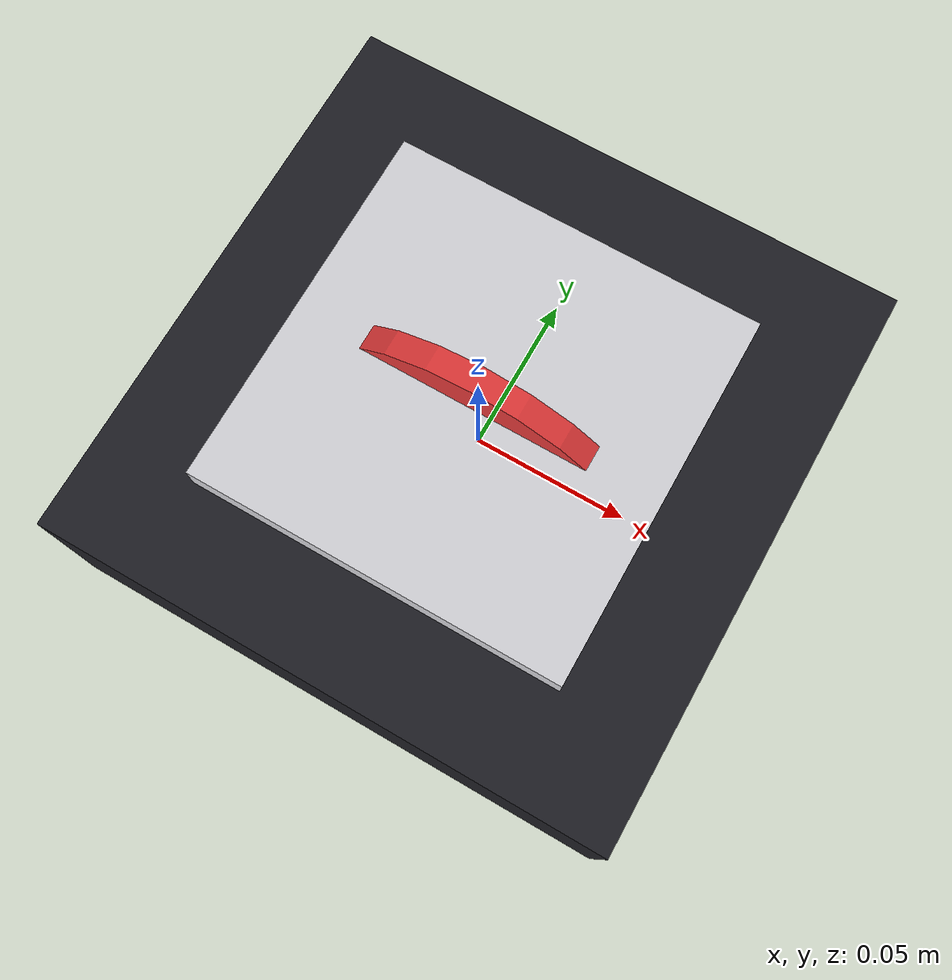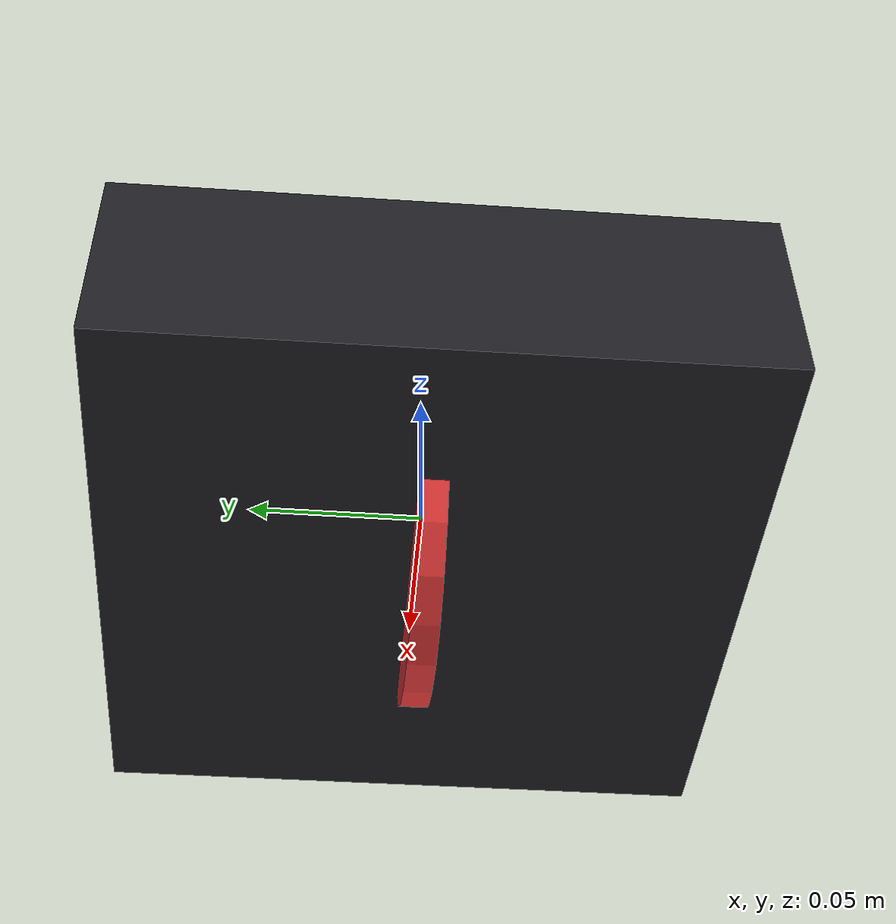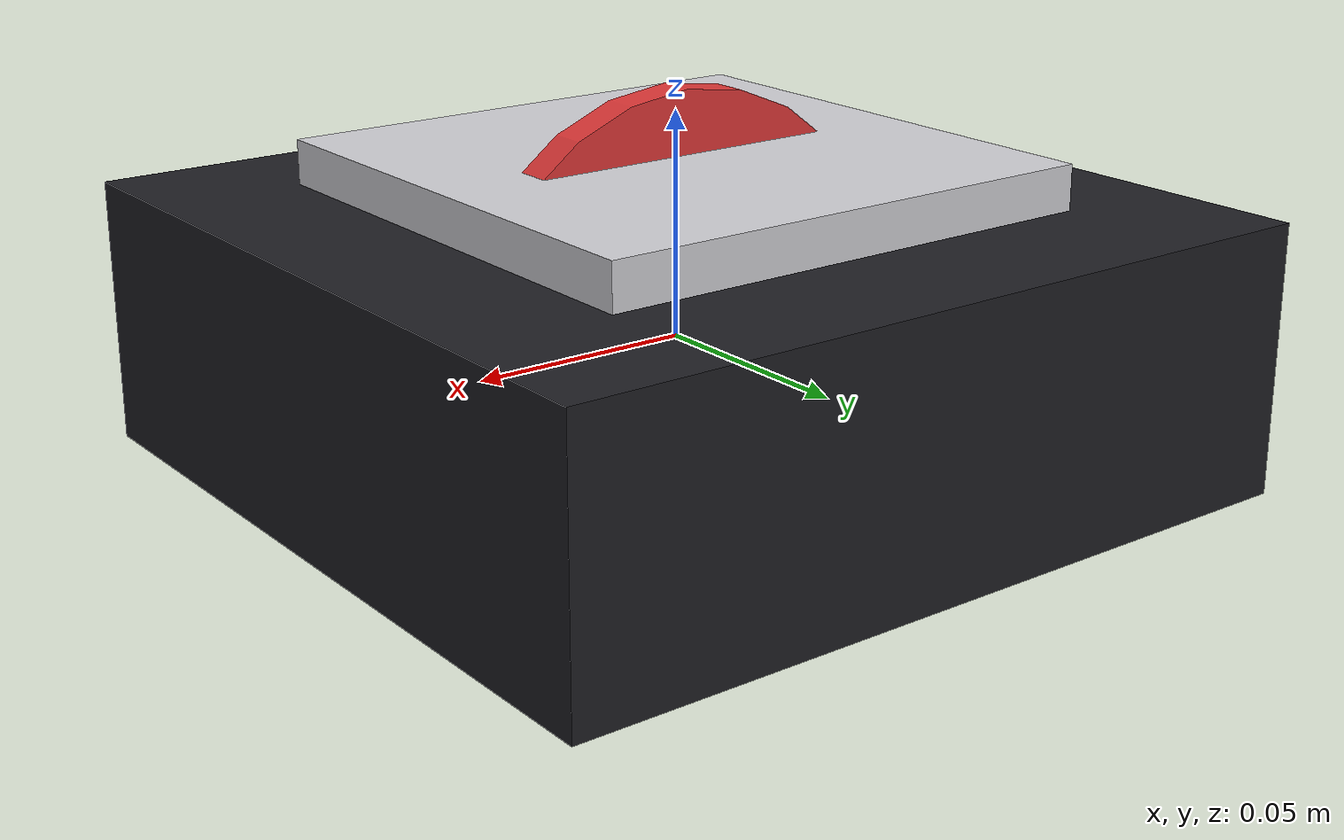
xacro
<?xml version="1.0"?>
<robot name="cube_parametric_drone" xmlns:xacro="http://www.ros.org/wiki/xacro">

  <xacro:arg name="genome_id" default="cube_000"/>
  <xacro:arg name="family" default="quad_x"/>
  <xacro:arg name="num_rotors" default="4"/>

  <xacro:arg name="body_length" default="0.18"/>
  <xacro:arg name="body_width" default="0.18"/>
  <xacro:arg name="body_height" default="0.06"/>

  <xacro:arg name="arm_radius" default="0.010"/>
  <xacro:arg name="rotor_radius" default="0.055"/>
  <xacro:arg name="rotor_thickness" default="0.008"/>

  <xacro:arg name="base_mass" default="1.10"/>
  <xacro:arg name="arm_mass" default="0.035"/>
  <xacro:arg name="rotor_mass" default="0.022"/>
  <xacro:arg name="imu_mass" default="0.010"/>

  <xacro:arg name="mount_x_1" default="0.0"/>
  <xacro:arg name="mount_x_2" default="0.0"/>
  <xacro:arg name="mount_x_3" default="0.0"/>
  <xacro:arg name="mount_x_4" default="0.0"/>
  <xacro:arg name="mount_x_5" default="0.0"/>
  <xacro:arg name="mount_x_6" default="0.0"/>
  <xacro:arg name="mount_x_7" default="0.0"/>
  <xacro:arg name="mount_x_8" default="0.0"/>

  <xacro:arg name="mount_y_1" default="0.0"/>
  <xacro:arg name="mount_y_2" default="0.0"/>
  <xacro:arg name="mount_y_3" default="0.0"/>
  <xacro:arg name="mount_y_4" default="0.0"/>
  <xacro:arg name="mount_y_5" default="0.0"/>
  <xacro:arg name="mount_y_6" default="0.0"/>
  <xacro:arg name="mount_y_7" default="0.0"/>
  <xacro:arg name="mount_y_8" default="0.0"/>

  <xacro:arg name="arm_len_1" default="0.0"/>
  <xacro:arg name="arm_len_2" default="0.0"/>
  <xacro:arg name="arm_len_3" default="0.0"/>
  <xacro:arg name="arm_len_4" default="0.0"/>
  <xacro:arg name="arm_len_5" default="0.0"/>
  <xacro:arg name="arm_len_6" default="0.0"/>
  <xacro:arg name="arm_len_7" default="0.0"/>
  <xacro:arg name="arm_len_8" default="0.0"/>

  <xacro:arg name="arm_ang_1" default="0.0"/>
  <xacro:arg name="arm_ang_2" default="0.0"/>
  <xacro:arg name="arm_ang_3" default="0.0"/>
  <xacro:arg name="arm_ang_4" default="0.0"/>
  <xacro:arg name="arm_ang_5" default="0.0"/>
  <xacro:arg name="arm_ang_6" default="0.0"/>
  <xacro:arg name="arm_ang_7" default="0.0"/>
  <xacro:arg name="arm_ang_8" default="0.0"/>

  <xacro:arg name="rotor_z_1" default="0.0"/>
  <xacro:arg name="rotor_z_2" default="0.0"/>
  <xacro:arg name="rotor_z_3" default="0.0"/>
  <xacro:arg name="rotor_z_4" default="0.0"/>
  <xacro:arg name="rotor_z_5" default="0.0"/>
  <xacro:arg name="rotor_z_6" default="0.0"/>
  <xacro:arg name="rotor_z_7" default="0.0"/>
  <xacro:arg name="rotor_z_8" default="0.0"/>

  <xacro:arg name="active_1" default="true"/>
  <xacro:arg name="active_2" default="true"/>
  <xacro:arg name="active_3" default="true"/>
  <xacro:arg name="active_4" default="true"/>
  <xacro:arg name="active_5" default="false"/>
  <xacro:arg name="active_6" default="false"/>
  <xacro:arg name="active_7" default="false"/>
  <xacro:arg name="active_8" default="false"/>

  <xacro:property name="body_length" value="$(arg body_length)"/>
  <xacro:property name="body_width" value="$(arg body_width)"/>
  <xacro:property name="body_height" value="$(arg body_height)"/>

  <xacro:property name="arm_radius" value="$(arg arm_radius)"/>
  <xacro:property name="rotor_radius" value="$(arg rotor_radius)"/>
  <xacro:property name="rotor_thickness" value="$(arg rotor_thickness)"/>

  <xacro:property name="base_mass" value="$(arg base_mass)"/>
  <xacro:property name="arm_mass" value="$(arg arm_mass)"/>
  <xacro:property name="rotor_mass" value="$(arg rotor_mass)"/>
  <xacro:property name="imu_mass" value="$(arg imu_mass)"/>

  <xacro:property name="base_ixx" value="${0.01 + base_mass*body_width*body_width/12.0}"/>
  <xacro:property name="base_iyy" value="${0.01 + base_mass*body_length*body_length/12.0}"/>
  <xacro:property name="base_izz" value="${0.02 + base_mass*(body_length*body_length + body_width*body_width)/12.0}"/>

  <material name="body_dark">
    <color rgba="0.12 0.12 0.14 1.0"/>
  </material>
  <material name="arm_gray">
    <color rgba="0.82 0.82 0.84 1.0"/>
  </material>
  <material name="red">
    <color rgba="0.88 0.22 0.22 1.0"/>
  </material>
  <material name="blue">
    <color rgba="0.20 0.40 0.92 1.0"/>
  </material>

  <xacro:macro name="simple_inertial" params="mass ixx iyy izz">
    <inertial>
      <origin xyz="0 0 0" rpy="0 0 0"/>
      <mass value="${mass}"/>
      <inertia ixx="${ixx}" ixy="0.0" ixz="0.0"
               iyy="${iyy}" iyz="0.0"
               izz="${izz}"/>
    </inertial>
  </xacro:macro>

  <xacro:macro name="station" params="idx mount_x mount_y arm_len arm_ang rotor_z color active">
    <xacro:if value="${active}">
      <link name="arm_${idx}_link">
        <xacro:simple_inertial mass="${arm_mass}" ixx="0.0002" iyy="0.0010" izz="0.0010"/>
        <visual>
          <origin xyz="${arm_len/2.0} 0 0" rpy="0 1.57079632679 0"/>
          <geometry>
            <cylinder radius="${arm_radius}" length="${arm_len}"/>
          </geometry>
          <material name="arm_gray"/>
        </visual>
        <collision>
          <origin xyz="${arm_len/2.0} 0 0" rpy="0 1.57079632679 0"/>
          <geometry>
            <cylinder radius="${arm_radius*1.1}" length="${arm_len}"/>
          </geometry>
        </collision>
      </link>

      <joint name="arm_${idx}_joint" type="fixed">
        <parent link="base_link"/>
        <child link="arm_${idx}_link"/>
        <origin xyz="${mount_x} ${mount_y} 0" rpy="0 0 ${arm_ang}"/>
      </joint>

      <link name="rotor_${idx}_link">
        <xacro:simple_inertial mass="${rotor_mass}" ixx="0.00002" iyy="0.00002" izz="0.00004"/>
        <visual>
          <origin xyz="0 0 0" rpy="1.57079632679 0 0"/>
          <geometry>
            <cylinder radius="${rotor_radius}" length="${rotor_thickness}"/>
          </geometry>
          <material name="${color}"/>
        </visual>
        <collision>
          <origin xyz="0 0 0" rpy="1.57079632679 0 0"/>
          <geometry>
            <cylinder radius="${rotor_radius}" length="${rotor_thickness}"/>
          </geometry>
        </collision>
      </link>

      <joint name="rotor_${idx}_joint" type="continuous">
        <parent link="arm_${idx}_link"/>
        <child link="rotor_${idx}_link"/>
        <origin xyz="${arm_len} 0 ${rotor_z}" rpy="0 0 0"/>
        <axis xyz="0 0 1"/>
        <limit effort="2.0" velocity="3000.0"/>
        <dynamics damping="0.001" friction="0.0"/>
      </joint>
    </xacro:if>
  </xacro:macro>

  <link name="base_link">
    <xacro:simple_inertial mass="${base_mass}" ixx="${base_ixx}" iyy="${base_iyy}" izz="${base_izz}"/>
    <visual>
      <geometry>
        <box size="${body_length} ${body_width} ${body_height}"/>
      </geometry>
      <material name="body_dark"/>
    </visual>
    <collision>
      <geometry>
        <box size="${body_length} ${body_width} ${body_height}"/>
      </geometry>
    </collision>
  </link>

  <link name="imu_link">
    <xacro:simple_inertial mass="${imu_mass}" ixx="0.00001" iyy="0.00001" izz="0.00001"/>
  </link>
  <joint name="imu_joint" type="fixed">
    <parent link="base_link"/>
    <child link="imu_link"/>
    <origin xyz="0 0 ${body_height/2.0}" rpy="0 0 0"/>
  </joint>

  <!-- small top plate for clearer silhouette -->
  <link name="top_plate_link">
    <xacro:simple_inertial mass="0.01" ixx="0.00001" iyy="0.00001" izz="0.00001"/>
    <visual>
      <origin xyz="0 0 ${body_height/2.0 + 0.006}" rpy="0 0 0"/>
      <geometry>
        <box size="${body_length*0.65} ${body_width*0.65} 0.01"/>
      </geometry>
      <material name="arm_gray"/>
    </visual>
  </link>
  <joint name="top_plate_joint" type="fixed">
    <parent link="base_link"/>
    <child link="top_plate_link"/>
    <origin xyz="0 0 0" rpy="0 0 0"/>
  </joint>

  <xacro:station idx="1" mount_x="$(arg mount_x_1)" mount_y="$(arg mount_y_1)" arm_len="$(arg arm_len_1)" arm_ang="$(arg arm_ang_1)" rotor_z="$(arg rotor_z_1)" color="red"  active="$(arg active_1)"/>
  <xacro:station idx="2" mount_x="$(arg mount_x_2)" mount_y="$(arg mount_y_2)" arm_len="$(arg arm_len_2)" arm_ang="$(arg arm_ang_2)" rotor_z="$(arg rotor_z_2)" color="blue" active="$(arg active_2)"/>
  <xacro:station idx="3" mount_x="$(arg mount_x_3)" mount_y="$(arg mount_y_3)" arm_len="$(arg arm_len_3)" arm_ang="$(arg arm_ang_3)" rotor_z="$(arg rotor_z_3)" color="red"  active="$(arg active_3)"/>
  <xacro:station idx="4" mount_x="$(arg mount_x_4)" mount_y="$(arg mount_y_4)" arm_len="$(arg arm_len_4)" arm_ang="$(arg arm_ang_4)" rotor_z="$(arg rotor_z_4)" color="blue" active="$(arg active_4)"/>
  <xacro:station idx="5" mount_x="$(arg mount_x_5)" mount_y="$(arg mount_y_5)" arm_len="$(arg arm_len_5)" arm_ang="$(arg arm_ang_5)" rotor_z="$(arg rotor_z_5)" color="red"  active="$(arg active_5)"/>
  <xacro:station idx="6" mount_x="$(arg mount_x_6)" mount_y="$(arg mount_y_6)" arm_len="$(arg arm_len_6)" arm_ang="$(arg arm_ang_6)" rotor_z="$(arg rotor_z_6)" color="blue" active="$(arg active_6)"/>
  <xacro:station idx="7" mount_x="$(arg mount_x_7)" mount_y="$(arg mount_y_7)" arm_len="$(arg arm_len_7)" arm_ang="$(arg arm_ang_7)" rotor_z="$(arg rotor_z_7)" color="red"  active="$(arg active_7)"/>
  <xacro:station idx="8" mount_x="$(arg mount_x_8)" mount_y="$(arg mount_y_8)" arm_len="$(arg arm_len_8)" arm_ang="$(arg arm_ang_8)" rotor_z="$(arg rotor_z_8)" color="blue" active="$(arg active_8)"/>

</robot>
